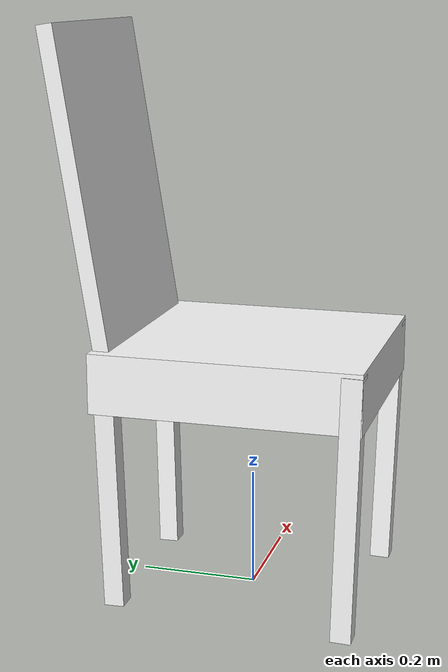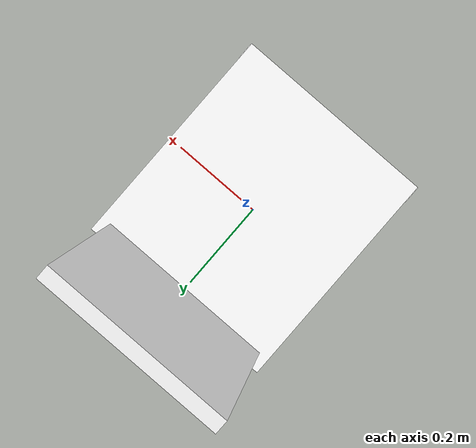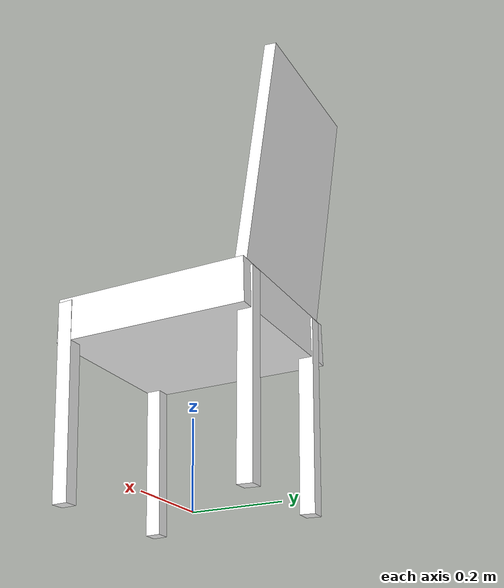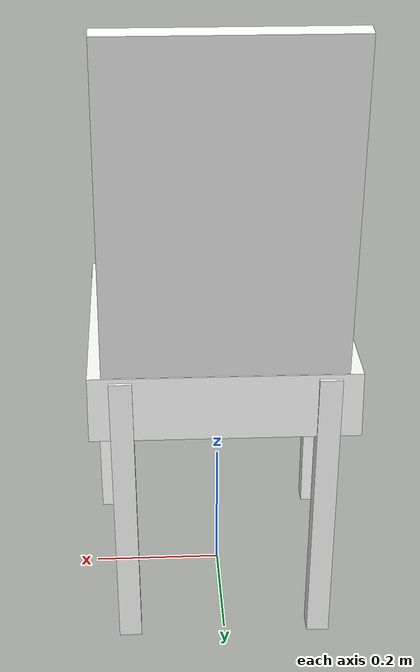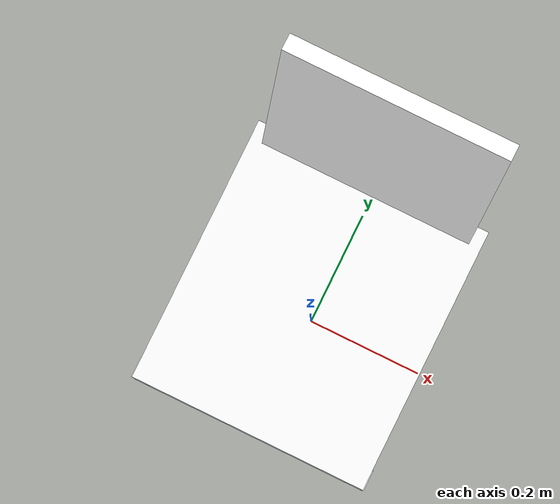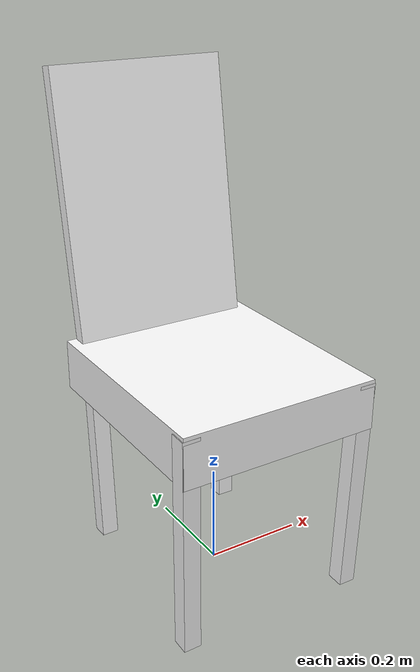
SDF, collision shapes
<?xml version="1.0" encoding="UTF-8"?>
<sdf version="1.6">
  <model name="DiningChair">
    <static>true</static>
    <link name="base_link">
      <visual name="visual">
        <geometry>
          <mesh>
            <uri>meshes/diningchair.dae</uri>
          </mesh>
        </geometry>
        <material>
          <diffuse>1.0 1.0 1.0</diffuse>
          <specular>1.0 1.0 1.0</specular>
          <pbr>
            <metal>
              <albedo_map>materials/textures/DiningChair_Albedo.jpg</albedo_map>
              <normal_map>materials/textures/DiningChair_Normal.jpg</normal_map>
              <roughness_map>materials/textures/DiningChair_Roughness.jpg</roughness_map>
            </metal>
          </pbr>
        </material>
      </visual>
      <collision name="Box001">
        <pose>-0.149000 0.205000 0.220000 -0.028 -0.015 0.0</pose>
        <geometry>
          <box>
            <size>0.034 0.034 0.440000</size>
          </box>
        </geometry>
      </collision>
      <collision name="Box002">
        <pose>-0.181000 -0.201000 0.220000 0.028 -0.015 0.0</pose>
        <geometry>
          <box>
            <size>0.034 0.034 0.440000</size>
          </box>
        </geometry>
      </collision>
      <collision name="Box003">
        <pose>0.0 -0.000563771 0.396734 0.0 0.0 0.0</pose>
        <geometry>
          <box>
            <size>0.3996 0.4468 0.10</size>
          </box>
        </geometry>
      </collision>
      <collision name="Box004">
        <pose>0.0 0.246451 0.700029 -0.156988 0.0 0.0</pose>
        <geometry>
          <box>
            <size>0.35964 0.0272995 0.52543</size>
          </box>
        </geometry>
      </collision>
      <collision name="Box005">
        <pose>0.181000 -0.201000 0.220000 0.028 0.015 0.0</pose>
        <geometry>
          <box>
            <size>0.034 0.034 0.440000</size>
          </box>
        </geometry>
      </collision>
      <collision name="Box006">
        <pose>0.149000 0.205000 0.220000 -0.028 0.015 0.0</pose>
        <geometry>
          <box>
            <size>0.034 0.034 0.440000</size>
          </box>
        </geometry>
      </collision>
    </link>
  </model>
</sdf>
